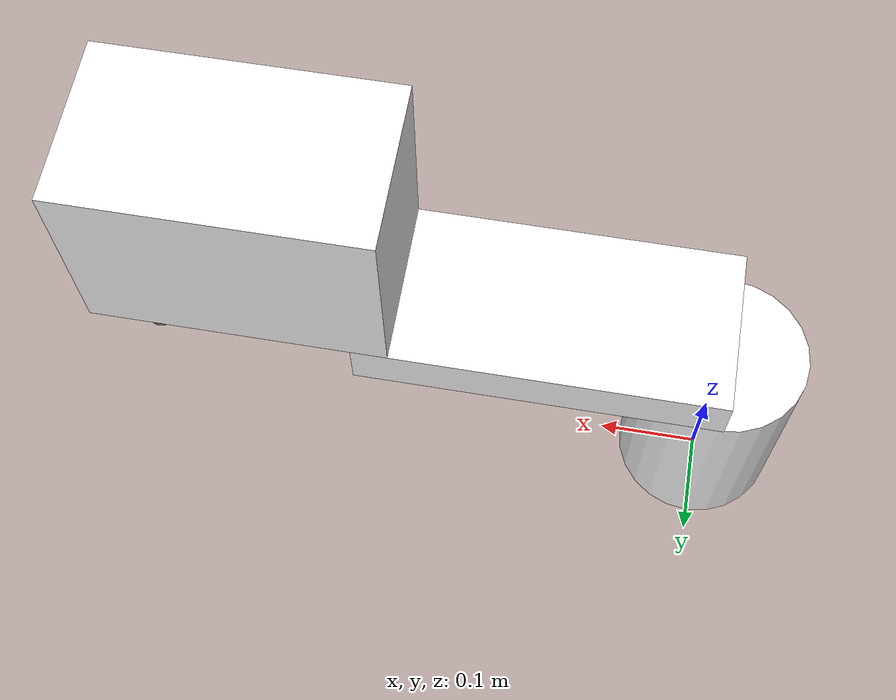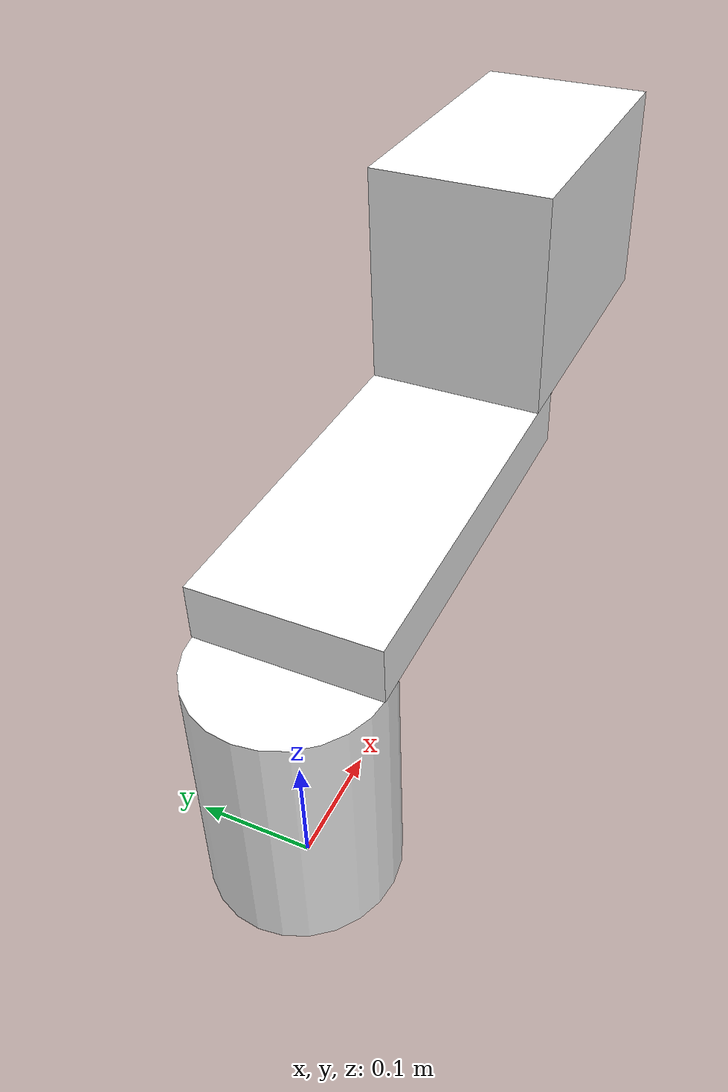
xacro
<?xml version="1.0"?>
<robot name="robot"
       xmlns:xacro="http://ros.org/wiki/xacro">

  <xacro:include filename="$(find model)/urdf/parameters.xacro" />

<!-- FOOTPRINT -->
  <link name="footprint" />

<!-- BASE -->
  <link name="base">
    <visual>
        <origin xyz="0 0 ${base_offset_from_z}" rpy="0 0 0" />
        <geometry>
            <cylinder length="${base_height}" radius="${base_radius}" />
        </geometry>
        <material name="White" />
    </visual>
  </link>

  <joint name="base_joint" type="fixed">
    <origin xyz="0 0 ${base_height/2 - base_offset_from_z}" rpy="0 0 0" />
    <parent link="footprint" />
    <child link="base" />
  </joint>

<!-- SHOULDER -->
  <link name="shoulder">
    <visual>
        <origin xyz="${shoulder_offset_from_x} 0 0" rpy="0 0 0" />
        <geometry>
            <box size="${shoulder_length} ${shoulder_width} ${shoulder_height}" />
        </geometry>
        <material name="White" />
    </visual>
  </link>

  <joint name="shoulder_joint" type="fixed">
    <origin xyz="${a1} 0 ${d1}" rpy="0 0 0" />
    <parent link="base" />
    <child link="shoulder" />
  </joint>

<!-- UPPERARM -->
  <link name="upperarm">
    <visual>
        <origin xyz="${upperarm_offset_from_x} 0 0" rpy="0 0 0" />
        <geometry>
            <box size="${upperarm_length} ${upperarm_width} ${upperarm_height}" />
        </geometry>
        <material name="White" />
    </visual>
  </link>

  <joint name="upperarm_joint" type="fixed">
    <origin xyz="${a2} 0 ${d2}" rpy="0 0 0" />
    <parent link="shoulder" />
    <child link="upperarm" />
  </joint>

<!-- FOREARM -->
  <link name="forearm">
    <visual>
        <origin xyz="0 0 ${forearm_offset_from_z}" rpy="0 0 0" />
        <geometry>
            <cylinder length="${forearm_height}" radius="${forearm_radius}" />
        </geometry>
        <material name="Gray" />
    </visual>
  </link>

  <joint name="forearm_joint" type="fixed">
    <origin xyz="0 0 0" rpy="${alpha3} 0 0" />
    <parent link="upperarm" />
    <child link="forearm" />
  </joint>

</robot>

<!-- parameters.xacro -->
<robot name="parameters"
       xmlns:xacro="http://www.ros.org/wiki/xacro">

  <xacro:property name="PI" value="3.1415926535897931" />
  <xacro:property name="DEG_TO_RAD" value="0.017453293" />

  <!-- Colors -->
  <material name="Black"> <color rgba="0.0 0.0 0.0 1.0"/> </material>
  <material name="Red"> <color rgba="0.8 0.0 0.0 1.0"/> </material>
  <material name="White"> <color rgba="1.0 1.0 1.0 1.0"/> </material>
  <material name="Blue"> <color rgba="0.0 0.0 0.8 1.0"/> </material>
  <material name="Gray"> <color rgba="0.0 0.0 0.0 0.5"/> </material>

  <!-- DH parameters -->
  <xacro:property name="a1" value="0.320" />
  <xacro:property name="d1" value="0.045" />
  <xacro:property name="a2" value="0.250" />
  <xacro:property name="d2" value="0.125" />
  <xacro:property name="alpha3" value="3.1415926535897931" />

  <!-- Base parameters -->
  <xacro:property name="base_radius" value="0.08" />
  <xacro:property name="base_height" value="0.22" />
  <xacro:property name="base_offset_from_z" value="-0.09" />
  <xacro:property name="base_mass" value="2" />

  <!-- Shoulder parameters -->
  <xacro:property name="shoulder_length" value="0.35" />
  <xacro:property name="shoulder_width" value="0.16" />
  <xacro:property name="shoulder_height" value="0.05" />
  <xacro:property name="shoulder_offset_from_x" value="-0.15" />
  <xacro:property name="shoulder_mass" value="1.2" />

  <!-- Upperarm parameters -->
  <xacro:property name="upperarm_length" value="0.28" />
  <xacro:property name="upperarm_width" value="0.16" />
  <xacro:property name="upperarm_height" value="0.20" />
  <xacro:property name="upperarm_offset_from_x" value="-0.12" />
  <xacro:property name="upperarm_mass" value="2" />

  <!-- Forearm parameters -->
  <xacro:property name="forearm_radius" value="0.015" />
  <xacro:property name="forearm_height" value="0.30" />
  <xacro:property name="forearm_mass" value="1" />
  <xacro:property name="forearm_offset_from_z" value="0.10" />

</robot>
